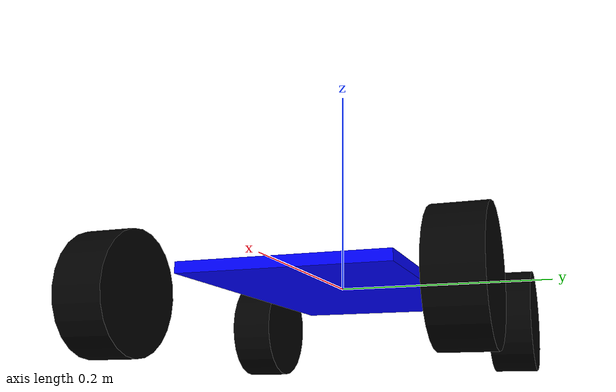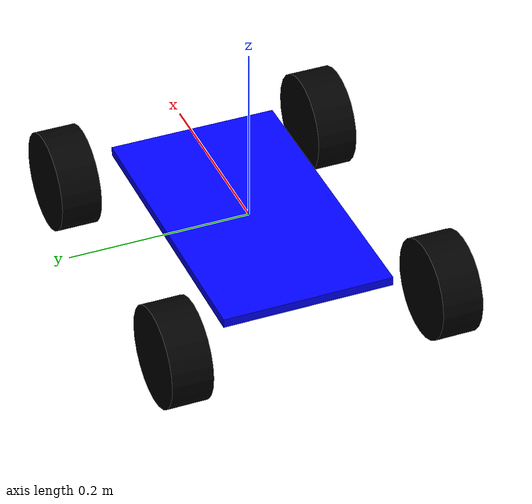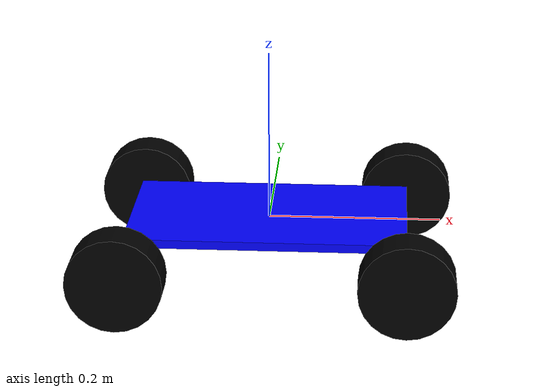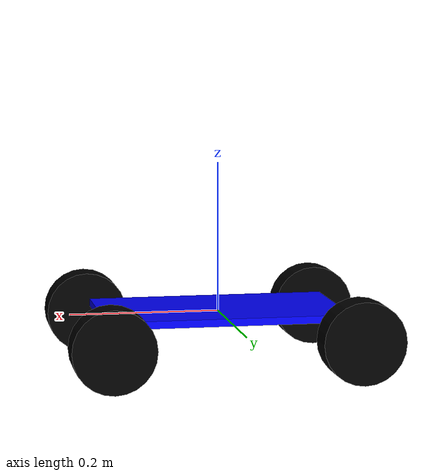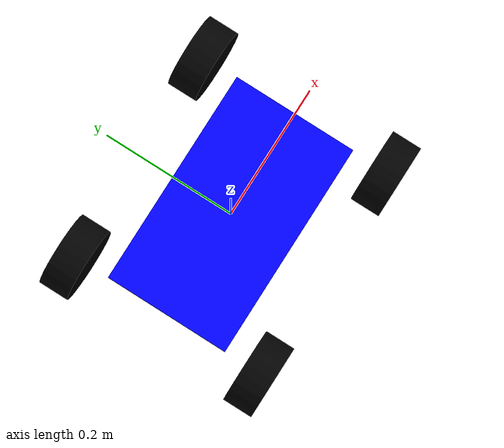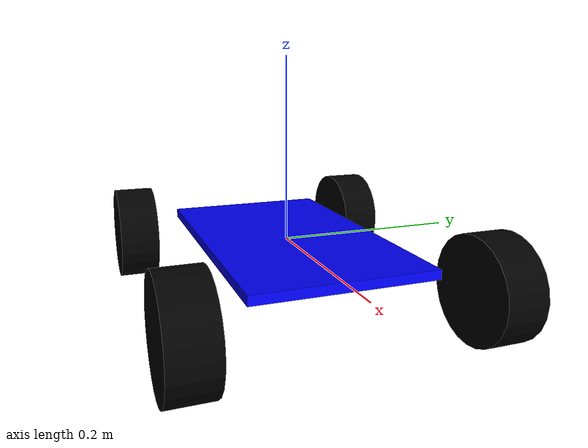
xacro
<?xml version="1.0"?>
<robot name="slash_4x4_ultimate"
       xmlns:xacro="http://www.ros.org/wiki/xacro">

  <!-- Base -->

  <link name="base">
    <visual>
      <origin xyz="0 0 0" rpy="0 0 0"/>
      <geometry>
        <box size="0.324 0.187 0.01"/>
      </geometry>
      <material name="blue">
        <color rgba="0 0 1 1"/>
      </material>
    </visual>
  </link>

  <!-- Front axle center -->

  <link name="front_axle_center"/>

  <joint name="front_axle_center_joint" type="fixed">
    <parent link="base"/>
    <child link="front_axle_center"/>
    <origin xyz="0.162 0 0" rpy="0 0 0"/>
  </joint>

  <!-- IMU -->

  <link name="imu_link"/>

  <joint name="imu_joint" type="fixed">
    <parent link="front_axle_center"/>
    <child link="imu_link"/>
    <origin xyz="-0.11 0 0" rpy="3.141592653589793 0 0"/>
  </joint>

  <!-- Steering links -->

  <link name="left_steer_link"/>

  <joint name="left_steer_joint" type="revolute">
    <parent link="base"/>
    <child link="left_steer_link"/>
    <origin xyz="0.162 0.148 -0.02" rpy="0 0 0"/>
    <axis xyz="0 0 1"/>
    <limit lower="-0.29560744145545503"
           upper="0.3992510660039466"
           effort="1000000"
           velocity="3.194008528031573"/>
  </joint>

  <link name="right_steer_link"/>

  <joint name="right_steer_joint" type="revolute">
    <parent link="base"/>
    <child link="right_steer_link"/>
    <origin xyz="0.162 -0.148 -0.02" rpy="0 0 0"/>
    <axis xyz="0 0 1"/>
    <limit lower="-0.3992510660039466"
           upper="0.29560744145545503"
           effort="1000000"
           velocity="3.194008528031573"/>
  </joint>

  <!-- Wheel macro -->

  <xacro:macro name="wheel" params="name">

    <link name="${name}">
      <visual>
        <origin xyz="0 0 0" rpy="0 0 0"/>
        <geometry>
          <cylinder radius="0.05475"
                    length="0.0445"/>
        </geometry>
        <material name="black">
          <color rgba="0 0 0 1"/>
        </material>
      </visual>
    </link>

  </xacro:macro>

  <xacro:wheel name="front_left_wheel"/>
  <xacro:wheel name="front_right_wheel"/>
  <xacro:wheel name="rear_left_wheel"/>
  <xacro:wheel name="rear_right_wheel"/>

  <joint name="front_left_wheel_joint" type="continuous">
    <parent link="left_steer_link"/>
    <child link="front_left_wheel"/>
    <origin xyz="0 0 0" rpy="1.5707963267948966 0 0"/>
    <axis xyz="0 0 -1"/>
  </joint>

  <joint name="front_right_wheel_joint" type="continuous">
    <parent link="right_steer_link"/>
    <child link="front_right_wheel"/>
    <origin xyz="0 0 0" rpy="1.5707963267948966 0 0"/>
    <axis xyz="0 0 -1"/>
  </joint>

  <joint name="rear_left_wheel_joint" type="continuous">
    <parent link="base"/>
    <child link="rear_left_wheel"/>
    <origin xyz="-0.162 0.148 -0.02"
            rpy="1.5707963267948966 0 0"/>
    <axis xyz="0 0 -1"/>
  </joint>

  <joint name="rear_right_wheel_joint" type="continuous">
    <parent link="base"/>
    <child link="rear_right_wheel"/>
    <origin xyz="-0.162 -0.148 -0.02"
            rpy="1.5707963267948966 0 0"/>
    <axis xyz="0 0 -1"/>
  </joint>

  <!-- Lidar -->

  <link name="lidar_link"/>

  <joint name="base_to_laser_rviz" type="fixed">
    <parent link="base"/>
    <child link="lidar_link"/>
    <origin xyz="0.1144 0 0.1"
            rpy="0 0 0"/>
  </joint>

</robot>
